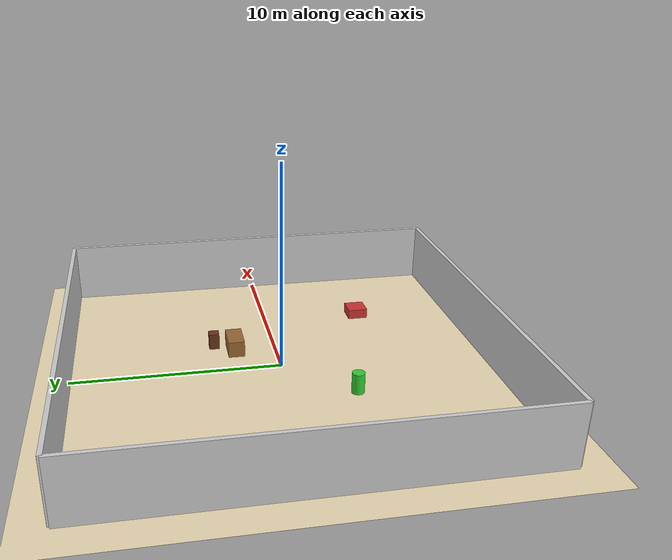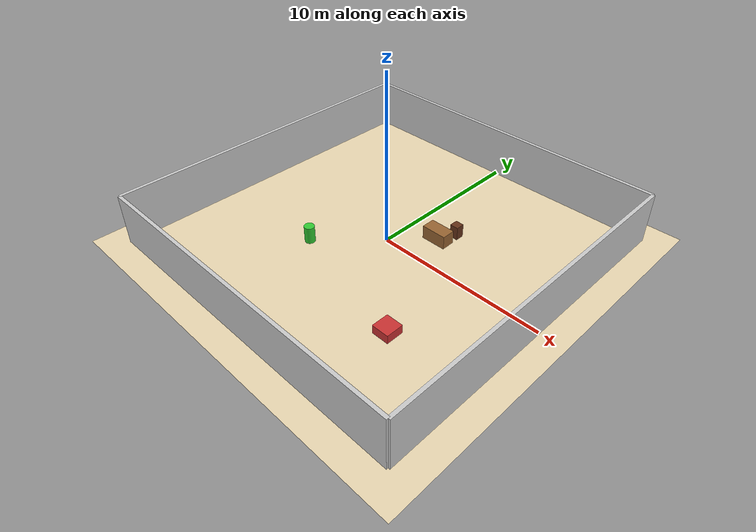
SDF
<?xml version="1.0"?>
<sdf version="1.6">
    <world name='default'>
        <plugin filename="ignition-gazebo-physics-system" name="ignition::gazebo::systems::Physics">
            <engine>
                <filename>ignition-physics-dartsim-plugin</filename>
            </engine>
        </plugin>
        <plugin filename="ignition-gazebo-user-commands-system"
            name="ignition::gazebo::systems::UserCommands">
        </plugin>
        <plugin filename="ignition-gazebo-scene-broadcaster-system"
            name="ignition::gazebo::systems::SceneBroadcaster">
        </plugin>

        <!-- Plugin for handling sensors like the LIDAR -->
        <plugin filename="ignition-gazebo-sensors-system" name="ignition::gazebo::systems::Sensors">
            <render_engine>ogre2</render_engine>
        </plugin>

        <!-- Plugin for IMU -->
        <plugin filename="ignition-gazebo-imu-system" name="ignition::gazebo::systems::Imu">
        </plugin>

        <!-- To add realistic gravity, do: 0.0 0.0 -9.8, otherwise do 0.0 0.0 0.0 -->
        <gravity>0.0 0.0 -9.8</gravity>

        <scene>
            <ambient>0.4 0.4 0.4 1</ambient>
            <background>0.7 0.7 0.7 1</background>
            <shadows>false</shadows>
            <grid>false</grid>
            <origin_visual>false</origin_visual>
        </scene>

        <!-- Local ground plane with modified friction -->
        <model name="ground_plane">
            <static>true</static>
            <link name="link">
                <collision name="collision">
                    <geometry>
                        <plane>
                            <normal>0 0 1</normal>
                            <size>100 100</size>
                        </plane>
                    </geometry>
                    <surface>
                        <friction>
                            <torsional>
                                <coefficient>0.0</coefficient>
                            </torsional>
                        </friction>
                    </surface>
                </collision>
                <visual name="visual">
                    <geometry>
                        <plane>
                            <normal>0 0 1</normal>
                            <size>100 100</size>
                        </plane>
                    </geometry>
                    <material>
                        <!-- Light oak/maple wood color -->
                        <ambient>0.92 0.85 0.7 1</ambient>
                        <diffuse>0.92 0.85 0.7 1</diffuse>
                        <specular>0.1 0.1 0.1 1</specular>
                    </material>
                </visual>
            </link>
        </model>

        <!-- Basic walls using boxes -->
        <model name='wall_north'>
            <static>true</static>
            <pose>0 10 1.5 0 0 0</pose>
            <link name='link'>
                <collision name='collision'>
                    <geometry>
                        <box>
                            <size>20 0.2 3</size>
                        </box>
                    </geometry>
                </collision>
                <visual name='visual'>
                    <geometry>
                        <box>
                            <size>20 0.2 3</size>
                        </box>
                    </geometry>
                    <material>
                        <ambient>0.8 0.8 0.8 1</ambient>
                        <diffuse>0.8 0.8 0.8 1</diffuse>
                    </material>
                </visual>
            </link>
        </model>

        <model name='wall_south'>
            <static>true</static>
            <pose>0 -10 1.5 0 0 0</pose>
            <link name='link'>
                <collision name='collision'>
                    <geometry>
                        <box>
                            <size>20 0.2 3</size>
                        </box>
                    </geometry>
                </collision>
                <visual name='visual'>
                    <geometry>
                        <box>
                            <size>20 0.2 3</size>
                        </box>
                    </geometry>
                    <material>
                        <ambient>0.8 0.8 0.8 1</ambient>
                        <diffuse>0.8 0.8 0.8 1</diffuse>
                    </material>
                </visual>
            </link>
        </model>

        <model name='wall_east'>
            <static>true</static>
            <pose>10 0 1.5 0 0 0</pose>
            <link name='link'>
                <collision name='collision'>
                    <geometry>
                        <box>
                            <size>0.2 20 3</size>
                        </box>
                    </geometry>
                </collision>
                <visual name='visual'>
                    <geometry>
                        <box>
                            <size>0.2 20 3</size>
                        </box>
                    </geometry>
                    <material>
                        <ambient>0.8 0.8 0.8 1</ambient>
                        <diffuse>0.8 0.8 0.8 1</diffuse>
                    </material>
                </visual>
            </link>
        </model>

        <model name='wall_west'>
            <static>true</static>
            <pose>-10 0 1.5 0 0 0</pose>
            <link name='link'>
                <collision name='collision'>
                    <geometry>
                        <box>
                            <size>0.2 20 3</size>
                        </box>
                    </geometry>
                </collision>
                <visual name='visual'>
                    <geometry>
                        <box>
                            <size>0.2 20 3</size>
                        </box>
                    </geometry>
                    <material>
                        <ambient>0.8 0.8 0.8 1</ambient>
                        <diffuse>0.8 0.8 0.8 1</diffuse>
                    </material>
                </visual>
            </link>
        </model>

        <!-- Basic furniture using simple shapes -->
        <model name='table_1'>
            <static>true</static>
            <pose>2 2 0.4 0 0 0</pose>
            <link name='link'>
                <collision name='collision'>
                    <geometry>
                        <box>
                            <size>1.5 0.8 0.8</size>
                        </box>
                    </geometry>
                </collision>
                <visual name='visual'>
                    <geometry>
                        <box>
                            <size>1.5 0.8 0.8</size>
                        </box>
                    </geometry>
                    <material>
                        <ambient>0.6 0.4 0.2 1</ambient>
                        <diffuse>0.6 0.4 0.2 1</diffuse>
                    </material>
                </visual>
            </link>
        </model>

        <model name='chair_1'>
            <static>true</static>
            <pose>2.5 3 0.4 0 0 0</pose>
            <link name='link'>
                <collision name='collision'>
                    <geometry>
                        <box>
                            <size>0.5 0.5 0.8</size>
                        </box>
                    </geometry>
                </collision>
                <visual name='visual'>
                    <geometry>
                        <box>
                            <size>0.5 0.5 0.8</size>
                        </box>
                    </geometry>
                    <material>
                        <ambient>0.4 0.2 0.1 1</ambient>
                        <diffuse>0.4 0.2 0.1 1</diffuse>
                    </material>
                </visual>
            </link>
        </model>

        <model name='obstacle_1'>
            <static>true</static>
            <pose>-3 -3 0.5 0 0 0</pose>
            <link name='link'>
                <collision name='collision'>
                    <geometry>
                        <cylinder>
                            <radius>0.3</radius>
                            <length>1.0</length>
                        </cylinder>
                    </geometry>
                </collision>
                <visual name='visual'>
                    <geometry>
                        <cylinder>
                            <radius>0.3</radius>
                            <length>1.0</length>
                        </cylinder>
                    </geometry>
                    <material>
                        <ambient>0.2 0.8 0.2 1</ambient>
                        <diffuse>0.2 0.8 0.2 1</diffuse>
                    </material>
                </visual>
            </link>
        </model>

        <model name='obstacle_2'>
            <static>true</static>
            <pose>5 -5 0.25 0 0 0</pose>
            <link name='link'>
                <collision name='collision'>
                    <geometry>
                        <box>
                            <size>1 1 0.5</size>
                        </box>
                    </geometry>
                </collision>
                <visual name='visual'>
                    <geometry>
                        <box>
                            <size>1 1 0.5</size>
                        </box>
                    </geometry>
                    <material>
                        <ambient>0.8 0.2 0.2 1</ambient>
                        <diffuse>0.8 0.2 0.2 1</diffuse>
                    </material>
                </visual>
            </link>
        </model>

        <light name='sun' type='directional'>
            <cast_shadows>1</cast_shadows>
            <pose>0 0 10 0 -0 0</pose>
            <diffuse>0.8 0.8 0.8 1</diffuse>
            <specular>0.2 0.2 0.2 1</specular>
            <attenuation>
                <range>1000</range>
                <constant>0.9</constant>
                <linear>0.01</linear>
                <quadratic>0.001</quadratic>
            </attenuation>
            <direction>-0.5 0.1 -0.9</direction>
        </light>

        <light name='room_light' type='point'>
            <pose>0 0 2.5 0 0 0</pose>
            <diffuse>0.5 0.5 0.5 1</diffuse>
            <specular>0.1 0.1 0.1 1</specular>
            <attenuation>
                <range>20</range>
                <constant>0.3</constant>
                <linear>0.01</linear>
                <quadratic>0.01</quadratic>
            </attenuation>
            <cast_shadows>0</cast_shadows>
            <direction>0 0 -1</direction>
        </light>

    </world>
</sdf>
